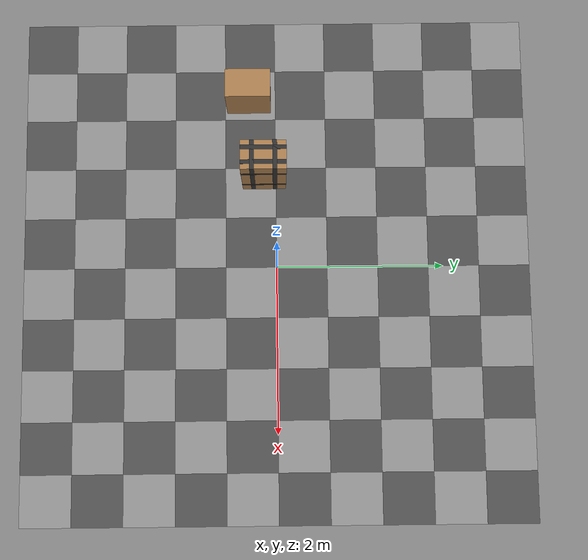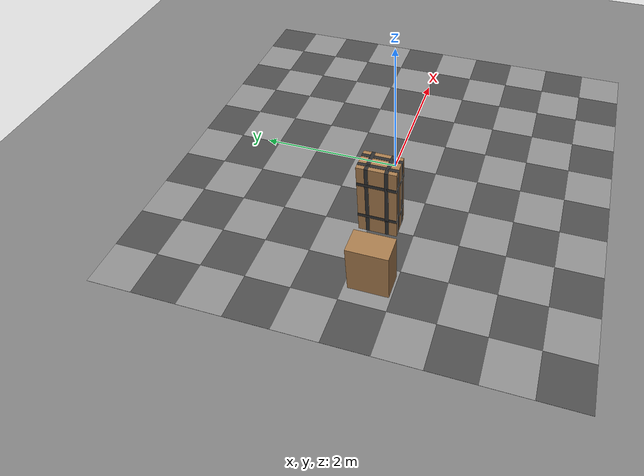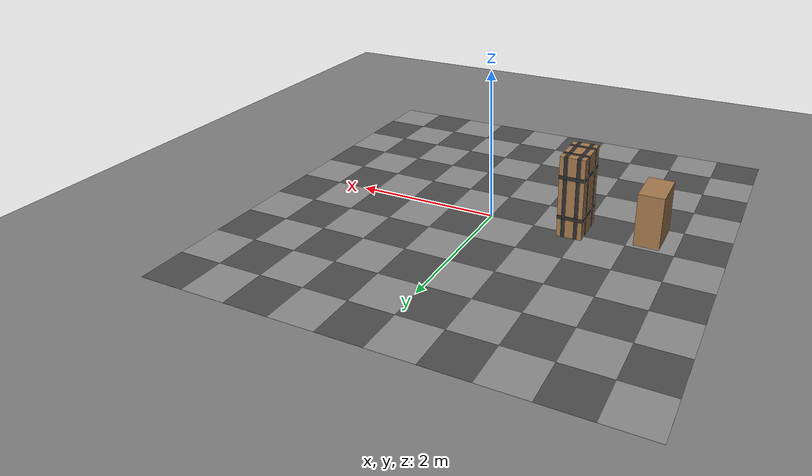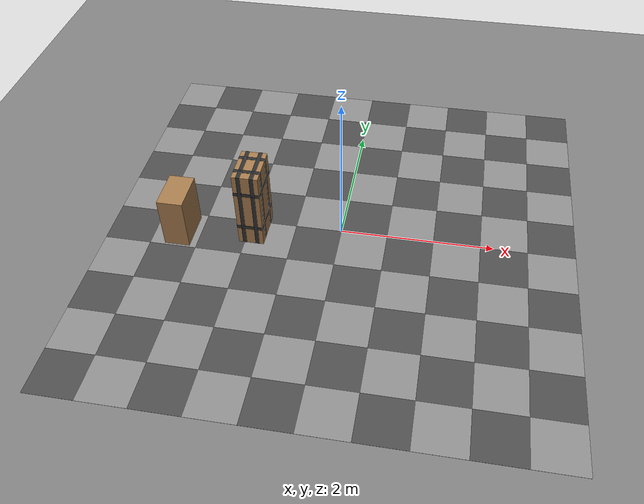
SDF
<sdf version="1.9">
 <world name="ecps295_lowbox_s28">
  <model name="ground_plane">
   <static>true</static>
   <link name="link">
    <collision name="collision">
     <geometry><plane><normal>0 0 1</normal><size>50 50</size></plane></geometry>
    </collision>
    <visual name="visual">
     <geometry><plane><normal>0 0 1</normal><size>50 50</size></plane></geometry>
     <material><ambient>0.5 0.5 0.5 1</ambient><diffuse>0.5 0.5 0.5 1</diffuse></material>
    </visual>
   </link>
  </model>
  <model name="eva_mat">
   <static>true</static>
   <link name="link">
    <visual name="t0_0">
     <pose>-2.745 -2.745 0.001 0 0 0</pose>
     <geometry><box><size>0.61 0.61 0.002</size></box></geometry>
     <material><ambient>0.3 0.3 0.3 1</ambient><diffuse>0.3 0.3 0.3 1</diffuse></material>
    </visual>
    <visual name="t0_1">
     <pose>-2.745 -2.135 0.001 0 0 0</pose>
     <geometry><box><size>0.61 0.61 0.002</size></box></geometry>
     <material><ambient>0.55 0.55 0.55 1</ambient><diffuse>0.55 0.55 0.55 1</diffuse></material>
    </visual>
    <visual name="t0_2">
     <pose>-2.745 -1.525 0.001 0 0 0</pose>
     <geometry><box><size>0.61 0.61 0.002</size></box></geometry>
     <material><ambient>0.3 0.3 0.3 1</ambient><diffuse>0.3 0.3 0.3 1</diffuse></material>
    </visual>
    <visual name="t0_3">
     <pose>-2.745 -0.915 0.001 0 0 0</pose>
     <geometry><box><size>0.61 0.61 0.002</size></box></geometry>
     <material><ambient>0.55 0.55 0.55 1</ambient><diffuse>0.55 0.55 0.55 1</diffuse></material>
    </visual>
    <visual name="t0_4">
     <pose>-2.745 -0.305 0.001 0 0 0</pose>
     <geometry><box><size>0.61 0.61 0.002</size></box></geometry>
     <material><ambient>0.3 0.3 0.3 1</ambient><diffuse>0.3 0.3 0.3 1</diffuse></material>
    </visual>
    <visual name="t0_5">
     <pose>-2.745 0.305 0.001 0 0 0</pose>
     <geometry><box><size>0.61 0.61 0.002</size></box></geometry>
     <material><ambient>0.55 0.55 0.55 1</ambient><diffuse>0.55 0.55 0.55 1</diffuse></material>
    </visual>
    <visual name="t0_6">
     <pose>-2.745 0.915 0.001 0 0 0</pose>
     <geometry><box><size>0.61 0.61 0.002</size></box></geometry>
     <material><ambient>0.3 0.3 0.3 1</ambient><diffuse>0.3 0.3 0.3 1</diffuse></material>
    </visual>
    <visual name="t0_7">
     <pose>-2.745 1.525 0.001 0 0 0</pose>
     <geometry><box><size>0.61 0.61 0.002</size></box></geometry>
     <material><ambient>0.55 0.55 0.55 1</ambient><diffuse>0.55 0.55 0.55 1</diffuse></material>
    </visual>
    <visual name="t0_8">
     <pose>-2.745 2.135 0.001 0 0 0</pose>
     <geometry><box><size>0.61 0.61 0.002</size></box></geometry>
     <material><ambient>0.3 0.3 0.3 1</ambient><diffuse>0.3 0.3 0.3 1</diffuse></material>
    </visual>
    <visual name="t0_9">
     <pose>-2.745 2.745 0.001 0 0 0</pose>
     <geometry><box><size>0.61 0.61 0.002</size></box></geometry>
     <material><ambient>0.55 0.55 0.55 1</ambient><diffuse>0.55 0.55 0.55 1</diffuse></material>
    </visual>
    <visual name="t1_0">
     <pose>-2.135 -2.745 0.001 0 0 0</pose>
     <geometry><box><size>0.61 0.61 0.002</size></box></geometry>
     <material><ambient>0.55 0.55 0.55 1</ambient><diffuse>0.55 0.55 0.55 1</diffuse></material>
    </visual>
    <visual name="t1_1">
     <pose>-2.135 -2.135 0.001 0 0 0</pose>
     <geometry><box><size>0.61 0.61 0.002</size></box></geometry>
     <material><ambient>0.3 0.3 0.3 1</ambient><diffuse>0.3 0.3 0.3 1</diffuse></material>
    </visual>
    <visual name="t1_2">
     <pose>-2.135 -1.525 0.001 0 0 0</pose>
     <geometry><box><size>0.61 0.61 0.002</size></box></geometry>
     <material><ambient>0.55 0.55 0.55 1</ambient><diffuse>0.55 0.55 0.55 1</diffuse></material>
    </visual>
    <visual name="t1_3">
     <pose>-2.135 -0.915 0.001 0 0 0</pose>
     <geometry><box><size>0.61 0.61 0.002</size></box></geometry>
     <material><ambient>0.3 0.3 0.3 1</ambient><diffuse>0.3 0.3 0.3 1</diffuse></material>
    </visual>
    <visual name="t1_4">
     <pose>-2.135 -0.305 0.001 0 0 0</pose>
     <geometry><box><size>0.61 0.61 0.002</size></box></geometry>
     <material><ambient>0.55 0.55 0.55 1</ambient><diffuse>0.55 0.55 0.55 1</diffuse></material>
    </visual>
    <visual name="t1_5">
     <pose>-2.135 0.305 0.001 0 0 0</pose>
     <geometry><box><size>0.61 0.61 0.002</size></box></geometry>
     <material><ambient>0.3 0.3 0.3 1</ambient><diffuse>0.3 0.3 0.3 1</diffuse></material>
    </visual>
    <visual name="t1_6">
     <pose>-2.135 0.915 0.001 0 0 0</pose>
     <geometry><box><size>0.61 0.61 0.002</size></box></geometry>
     <material><ambient>0.55 0.55 0.55 1</ambient><diffuse>0.55 0.55 0.55 1</diffuse></material>
    </visual>
    <visual name="t1_7">
     <pose>-2.135 1.525 0.001 0 0 0</pose>
     <geometry><box><size>0.61 0.61 0.002</size></box></geometry>
     <material><ambient>0.3 0.3 0.3 1</ambient><diffuse>0.3 0.3 0.3 1</diffuse></material>
    </visual>
    <visual name="t1_8">
     <pose>-2.135 2.135 0.001 0 0 0</pose>
     <geometry><box><size>0.61 0.61 0.002</size></box></geometry>
     <material><ambient>0.55 0.55 0.55 1</ambient><diffuse>0.55 0.55 0.55 1</diffuse></material>
    </visual>
    <visual name="t1_9">
     <pose>-2.135 2.745 0.001 0 0 0</pose>
     <geometry><box><size>0.61 0.61 0.002</size></box></geometry>
     <material><ambient>0.3 0.3 0.3 1</ambient><diffuse>0.3 0.3 0.3 1</diffuse></material>
    </visual>
    <visual name="t2_0">
     <pose>-1.525 -2.745 0.001 0 0 0</pose>
     <geometry><box><size>0.61 0.61 0.002</size></box></geometry>
     <material><ambient>0.3 0.3 0.3 1</ambient><diffuse>0.3 0.3 0.3 1</diffuse></material>
    </visual>
    <visual name="t2_1">
     <pose>-1.525 -2.135 0.001 0 0 0</pose>
     <geometry><box><size>0.61 0.61 0.002</size></box></geometry>
     <material><ambient>0.55 0.55 0.55 1</ambient><diffuse>0.55 0.55 0.55 1</diffuse></material>
    </visual>
    <visual name="t2_2">
     <pose>-1.525 -1.525 0.001 0 0 0</pose>
     <geometry><box><size>0.61 0.61 0.002</size></box></geometry>
     <material><ambient>0.3 0.3 0.3 1</ambient><diffuse>0.3 0.3 0.3 1</diffuse></material>
    </visual>
    <visual name="t2_3">
     <pose>-1.525 -0.915 0.001 0 0 0</pose>
     <geometry><box><size>0.61 0.61 0.002</size></box></geometry>
     <material><ambient>0.55 0.55 0.55 1</ambient><diffuse>0.55 0.55 0.55 1</diffuse></material>
    </visual>
    <visual name="t2_4">
     <pose>-1.525 -0.305 0.001 0 0 0</pose>
     <geometry><box><size>0.61 0.61 0.002</size></box></geometry>
     <material><ambient>0.3 0.3 0.3 1</ambient><diffuse>0.3 0.3 0.3 1</diffuse></material>
    </visual>
    <visual name="t2_5">
     <pose>-1.525 0.305 0.001 0 0 0</pose>
     <geometry><box><size>0.61 0.61 0.002</size></box></geometry>
     <material><ambient>0.55 0.55 0.55 1</ambient><diffuse>0.55 0.55 0.55 1</diffuse></material>
    </visual>
    <visual name="t2_6">
     <pose>-1.525 0.915 0.001 0 0 0</pose>
     <geometry><box><size>0.61 0.61 0.002</size></box></geometry>
     <material><ambient>0.3 0.3 0.3 1</ambient><diffuse>0.3 0.3 0.3 1</diffuse></material>
    </visual>
    <visual name="t2_7">
     <pose>-1.525 1.525 0.001 0 0 0</pose>
     <geometry><box><size>0.61 0.61 0.002</size></box></geometry>
     <material><ambient>0.55 0.55 0.55 1</ambient><diffuse>0.55 0.55 0.55 1</diffuse></material>
    </visual>
    <visual name="t2_8">
     <pose>-1.525 2.135 0.001 0 0 0</pose>
     <geometry><box><size>0.61 0.61 0.002</size></box></geometry>
     <material><ambient>0.3 0.3 0.3 1</ambient><diffuse>0.3 0.3 0.3 1</diffuse></material>
    </visual>
    <visual name="t2_9">
     <pose>-1.525 2.745 0.001 0 0 0</pose>
     <geometry><box><size>0.61 0.61 0.002</size></box></geometry>
     <material><ambient>0.55 0.55 0.55 1</ambient><diffuse>0.55 0.55 0.55 1</diffuse></material>
    </visual>
    <visual name="t3_0">
     <pose>-0.915 -2.745 0.001 0 0 0</pose>
     <geometry><box><size>0.61 0.61 0.002</size></box></geometry>
     <material><ambient>0.55 0.55 0.55 1</ambient><diffuse>0.55 0.55 0.55 1</diffuse></material>
    </visual>
    <visual name="t3_1">
     <pose>-0.915 -2.135 0.001 0 0 0</pose>
     <geometry><box><size>0.61 0.61 0.002</size></box></geometry>
     <material><ambient>0.3 0.3 0.3 1</ambient><diffuse>0.3 0.3 0.3 1</diffuse></material>
    </visual>
    <visual name="t3_2">
     <pose>-0.915 -1.525 0.001 0 0 0</pose>
     <geometry><box><size>0.61 0.61 0.002</size></box></geometry>
     <material><ambient>0.55 0.55 0.55 1</ambient><diffuse>0.55 0.55 0.55 1</diffuse></material>
    </visual>
    <visual name="t3_3">
     <pose>-0.915 -0.915 0.001 0 0 0</pose>
     <geometry><box><size>0.61 0.61 0.002</size></box></geometry>
     <material><ambient>0.3 0.3 0.3 1</ambient><diffuse>0.3 0.3 0.3 1</diffuse></material>
    </visual>
    <visual name="t3_4">
     <pose>-0.915 -0.305 0.001 0 0 0</pose>
     <geometry><box><size>0.61 0.61 0.002</size></box></geometry>
     <material><ambient>0.55 0.55 0.55 1</ambient><diffuse>0.55 0.55 0.55 1</diffuse></material>
    </visual>
    <visual name="t3_5">
     <pose>-0.915 0.305 0.001 0 0 0</pose>
     <geometry><box><size>0.61 0.61 0.002</size></box></geometry>
     <material><ambient>0.3 0.3 0.3 1</ambient><diffuse>0.3 0.3 0.3 1</diffuse></material>
    </visual>
    <visual name="t3_6">
     <pose>-0.915 0.915 0.001 0 0 0</pose>
     <geometry><box><size>0.61 0.61 0.002</size></box></geometry>
     <material><ambient>0.55 0.55 0.55 1</ambient><diffuse>0.55 0.55 0.55 1</diffuse></material>
    </visual>
    <visual name="t3_7">
     <pose>-0.915 1.525 0.001 0 0 0</pose>
     <geometry><box><size>0.61 0.61 0.002</size></box></geometry>
     <material><ambient>0.3 0.3 0.3 1</ambient><diffuse>0.3 0.3 0.3 1</diffuse></material>
    </visual>
    <visual name="t3_8">
     <pose>-0.915 2.135 0.001 0 0 0</pose>
     <geometry><box><size>0.61 0.61 0.002</size></box></geometry>
     <material><ambient>0.55 0.55 0.55 1</ambient><diffuse>0.55 0.55 0.55 1</diffuse></material>
    </visual>
    <visual name="t3_9">
     <pose>-0.915 2.745 0.001 0 0 0</pose>
     <geometry><box><size>0.61 0.61 0.002</size></box></geometry>
     <material><ambient>0.3 0.3 0.3 1</ambient><diffuse>0.3 0.3 0.3 1</diffuse></material>
    </visual>
    <visual name="t4_0">
     <pose>-0.305 -2.745 0.001 0 0 0</pose>
     <geometry><box><size>0.61 0.61 0.002</size></box></geometry>
     <material><ambient>0.3 0.3 0.3 1</ambient><diffuse>0.3 0.3 0.3 1</diffuse></material>
    </visual>
    <visual name="t4_1">
     <pose>-0.305 -2.135 0.001 0 0 0</pose>
     <geometry><box><size>0.61 0.61 0.002</size></box></geometry>
     <material><ambient>0.55 0.55 0.55 1</ambient><diffuse>0.55 0.55 0.55 1</diffuse></material>
    </visual>
    <visual name="t4_2">
     <pose>-0.305 -1.525 0.001 0 0 0</pose>
     <geometry><box><size>0.61 0.61 0.002</size></box></geometry>
     <material><ambient>0.3 0.3 0.3 1</ambient><diffuse>0.3 0.3 0.3 1</diffuse></material>
    </visual>
    <visual name="t4_3">
     <pose>-0.305 -0.915 0.001 0 0 0</pose>
     <geometry><box><size>0.61 0.61 0.002</size></box></geometry>
     <material><ambient>0.55 0.55 0.55 1</ambient><diffuse>0.55 0.55 0.55 1</diffuse></material>
    </visual>
    <visual name="t4_4">
     <pose>-0.305 -0.305 0.001 0 0 0</pose>
     <geometry><box><size>0.61 0.61 0.002</size></box></geometry>
     <material><ambient>0.3 0.3 0.3 1</ambient><diffuse>0.3 0.3 0.3 1</diffuse></material>
    </visual>
    <visual name="t4_5">
     <pose>-0.305 0.305 0.001 0 0 0</pose>
     <geometry><box><size>0.61 0.61 0.002</size></box></geometry>
     <material><ambient>0.55 0.55 0.55 1</ambient><diffuse>0.55 0.55 0.55 1</diffuse></material>
    </visual>
    <visual name="t4_6">
     <pose>-0.305 0.915 0.001 0 0 0</pose>
     <geometry><box><size>0.61 0.61 0.002</size></box></geometry>
     <material><ambient>0.3 0.3 0.3 1</ambient><diffuse>0.3 0.3 0.3 1</diffuse></material>
    </visual>
    <visual name="t4_7">
     <pose>-0.305 1.525 0.001 0 0 0</pose>
     <geometry><box><size>0.61 0.61 0.002</size></box></geometry>
     <material><ambient>0.55 0.55 0.55 1</ambient><diffuse>0.55 0.55 0.55 1</diffuse></material>
    </visual>
    <visual name="t4_8">
     <pose>-0.305 2.135 0.001 0 0 0</pose>
     <geometry><box><size>0.61 0.61 0.002</size></box></geometry>
     <material><ambient>0.3 0.3 0.3 1</ambient><diffuse>0.3 0.3 0.3 1</diffuse></material>
    </visual>
    <visual name="t4_9">
     <pose>-0.305 2.745 0.001 0 0 0</pose>
     <geometry><box><size>0.61 0.61 0.002</size></box></geometry>
     <material><ambient>0.55 0.55 0.55 1</ambient><diffuse>0.55 0.55 0.55 1</diffuse></material>
    </visual>
    <visual name="t5_0">
     <pose>0.305 -2.745 0.001 0 0 0</pose>
     <geometry><box><size>0.61 0.61 0.002</size></box></geometry>
     <material><ambient>0.55 0.55 0.55 1</ambient><diffuse>0.55 0.55 0.55 1</diffuse></material>
    </visual>
    <visual name="t5_1">
     <pose>0.305 -2.135 0.001 0 0 0</pose>
     <geometry><box><size>0.61 0.61 0.002</size></box></geometry>
     <material><ambient>0.3 0.3 0.3 1</ambient><diffuse>0.3 0.3 0.3 1</diffuse></material>
    </visual>
    <visual name="t5_2">
     <pose>0.305 -1.525 0.001 0 0 0</pose>
     <geometry><box><size>0.61 0.61 0.002</size></box></geometry>
     <material><ambient>0.55 0.55 0.55 1</ambient><diffuse>0.55 0.55 0.55 1</diffuse></material>
    </visual>
    <visual name="t5_3">
     <pose>0.305 -0.915 0.001 0 0 0</pose>
     <geometry><box><size>0.61 0.61 0.002</size></box></geometry>
     <material><ambient>0.3 0.3 0.3 1</ambient><diffuse>0.3 0.3 0.3 1</diffuse></material>
    </visual>
    <visual name="t5_4">
     <pose>0.305 -0.305 0.001 0 0 0</pose>
     <geometry><box><size>0.61 0.61 0.002</size></box></geometry>
     <material><ambient>0.55 0.55 0.55 1</ambient><diffuse>0.55 0.55 0.55 1</diffuse></material>
    </visual>
    <visual name="t5_5">
     <pose>0.305 0.305 0.001 0 0 0</pose>
     <geometry><box><size>0.61 0.61 0.002</size></box></geometry>
     <material><ambient>0.3 0.3 0.3 1</ambient><diffuse>0.3 0.3 0.3 1</diffuse></material>
    </visual>
    <visual name="t5_6">
     <pose>0.305 0.915 0.001 0 0 0</pose>
     <geometry><box><size>0.61 0.61 0.002</size></box></geometry>
     <material><ambient>0.55 0.55 0.55 1</ambient><diffuse>0.55 0.55 0.55 1</diffuse></material>
    </visual>
    <visual name="t5_7">
     <pose>0.305 1.525 0.001 0 0 0</pose>
     <geometry><box><size>0.61 0.61 0.002</size></box></geometry>
     <material><ambient>0.3 0.3 0.3 1</ambient><diffuse>0.3 0.3 0.3 1</diffuse></material>
    </visual>
    <visual name="t5_8">
     <pose>0.305 2.135 0.001 0 0 0</pose>
     <geometry><box><size>0.61 0.61 0.002</size></box></geometry>
     <material><ambient>0.55 0.55 0.55 1</ambient><diffuse>0.55 0.55 0.55 1</diffuse></material>
    </visual>
    <visual name="t5_9">
     <pose>0.305 2.745 0.001 0 0 0</pose>
     <geometry><box><size>0.61 0.61 0.002</size></box></geometry>
     <material><ambient>0.3 0.3 0.3 1</ambient><diffuse>0.3 0.3 0.3 1</diffuse></material>
    </visual>
    <visual name="t6_0">
     <pose>0.915 -2.745 0.001 0 0 0</pose>
     <geometry><box><size>0.61 0.61 0.002</size></box></geometry>
     <material><ambient>0.3 0.3 0.3 1</ambient><diffuse>0.3 0.3 0.3 1</diffuse></material>
    </visual>
    <visual name="t6_1">
     <pose>0.915 -2.135 0.001 0 0 0</pose>
     <geometry><box><size>0.61 0.61 0.002</size></box></geometry>
     <material><ambient>0.55 0.55 0.55 1</ambient><diffuse>0.55 0.55 0.55 1</diffuse></material>
    </visual>
    <visual name="t6_2">
     <pose>0.915 -1.525 0.001 0 0 0</pose>
     <geometry><box><size>0.61 0.61 0.002</size></box></geometry>
     <material><ambient>0.3 0.3 0.3 1</ambient><diffuse>0.3 0.3 0.3 1</diffuse></material>
    </visual>
    <visual name="t6_3">
     <pose>0.915 -0.915 0.001 0 0 0</pose>
     <geometry><box><size>0.61 0.61 0.002</size></box></geometry>
     <material><ambient>0.55 0.55 0.55 1</ambient><diffuse>0.55 0.55 0.55 1</diffuse></material>
    </visual>
    <visual name="t6_4">
     <pose>0.915 -0.305 0.001 0 0 0</pose>
     <geometry><box><size>0.61 0.61 0.002</size></box></geometry>
     <material><ambient>0.3 0.3 0.3 1</ambient><diffuse>0.3 0.3 0.3 1</diffuse></material>
    </visual>
    <visual name="t6_5">
     <pose>0.915 0.305 0.001 0 0 0</pose>
     <geometry><box><size>0.61 0.61 0.002</size></box></geometry>
     <material><ambient>0.55 0.55 0.55 1</ambient><diffuse>0.55 0.55 0.55 1</diffuse></material>
    </visual>
    <visual name="t6_6">
     <pose>0.915 0.915 0.001 0 0 0</pose>
     <geometry><box><size>0.61 0.61 0.002</size></box></geometry>
     <material><ambient>0.3 0.3 0.3 1</ambient><diffuse>0.3 0.3 0.3 1</diffuse></material>
    </visual>
    <visual name="t6_7">
     <pose>0.915 1.525 0.001 0 0 0</pose>
     <geometry><box><size>0.61 0.61 0.002</size></box></geometry>
     <material><ambient>0.55 0.55 0.55 1</ambient><diffuse>0.55 0.55 0.55 1</diffuse></material>
    </visual>
    <visual name="t6_8">
     <pose>0.915 2.135 0.001 0 0 0</pose>
     <geometry><box><size>0.61 0.61 0.002</size></box></geometry>
     <material><ambient>0.3 0.3 0.3 1</ambient><diffuse>0.3 0.3 0.3 1</diffuse></material>
    </visual>
    <visual name="t6_9">
     <pose>0.915 2.745 0.001 0 0 0</pose>
     <geometry><box><size>0.61 0.61 0.002</size></box></geometry>
     <material><ambient>0.55 0.55 0.55 1</ambient><diffuse>0.55 0.55 0.55 1</diffuse></material>
    </visual>
    <visual name="t7_0">
     <pose>1.525 -2.745 0.001 0 0 0</pose>
     <geometry><box><size>0.61 0.61 0.002</size></box></geometry>
     <material><ambient>0.55 0.55 0.55 1</ambient><diffuse>0.55 0.55 0.55 1</diffuse></material>
    </visual>
    <visual name="t7_1">
     <pose>1.525 -2.135 0.001 0 0 0</pose>
     <geometry><box><size>0.61 0.61 0.002</size></box></geometry>
     <material><ambient>0.3 0.3 0.3 1</ambient><diffuse>0.3 0.3 0.3 1</diffuse></material>
    </visual>
    <visual name="t7_2">
     <pose>1.525 -1.525 0.001 0 0 0</pose>
     <geometry><box><size>0.61 0.61 0.002</size></box></geometry>
     <material><ambient>0.55 0.55 0.55 1</ambient><diffuse>0.55 0.55 0.55 1</diffuse></material>
    </visual>
    <visual name="t7_3">
     <pose>1.525 -0.915 0.001 0 0 0</pose>
     <geometry><box><size>0.61 0.61 0.002</size></box></geometry>
     <material><ambient>0.3 0.3 0.3 1</ambient><diffuse>0.3 0.3 0.3 1</diffuse></material>
    </visual>
    <visual name="t7_4">
     <pose>1.525 -0.305 0.001 0 0 0</pose>
     <geometry><box><size>0.61 0.61 0.002</size></box></geometry>
     <material><ambient>0.55 0.55 0.55 1</ambient><diffuse>0.55 0.55 0.55 1</diffuse></material>
    </visual>
    <visual name="t7_5">
     <pose>1.525 0.305 0.001 0 0 0</pose>
     <geometry><box><size>0.61 0.61 0.002</size></box></geometry>
     <material><ambient>0.3 0.3 0.3 1</ambient><diffuse>0.3 0.3 0.3 1</diffuse></material>
    </visual>
    <visual name="t7_6">
     <pose>1.525 0.915 0.001 0 0 0</pose>
     <geometry><box><size>0.61 0.61 0.002</size></box></geometry>
     <material><ambient>0.55 0.55 0.55 1</ambient><diffuse>0.55 0.55 0.55 1</diffuse></material>
    </visual>
    <visual name="t7_7">
     <pose>1.525 1.525 0.001 0 0 0</pose>
     <geometry><box><size>0.61 0.61 0.002</size></box></geometry>
     <material><ambient>0.3 0.3 0.3 1</ambient><diffuse>0.3 0.3 0.3 1</diffuse></material>
    </visual>
    <visual name="t7_8">
     <pose>1.525 2.135 0.001 0 0 0</pose>
     <geometry><box><size>0.61 0.61 0.002</size></box></geometry>
     <material><ambient>0.55 0.55 0.55 1</ambient><diffuse>0.55 0.55 0.55 1</diffuse></material>
    </visual>
    <visual name="t7_9">
     <pose>1.525 2.745 0.001 0 0 0</pose>
     <geometry><box><size>0.61 0.61 0.002</size></box></geometry>
     <material><ambient>0.3 0.3 0.3 1</ambient><diffuse>0.3 0.3 0.3 1</diffuse></material>
    </visual>
    <visual name="t8_0">
     <pose>2.135 -2.745 0.001 0 0 0</pose>
     <geometry><box><size>0.61 0.61 0.002</size></box></geometry>
     <material><ambient>0.3 0.3 0.3 1</ambient><diffuse>0.3 0.3 0.3 1</diffuse></material>
    </visual>
    <visual name="t8_1">
     <pose>2.135 -2.135 0.001 0 0 0</pose>
     <geometry><box><size>0.61 0.61 0.002</size></box></geometry>
     <material><ambient>0.55 0.55 0.55 1</ambient><diffuse>0.55 0.55 0.55 1</diffuse></material>
    </visual>
    <visual name="t8_2">
     <pose>2.135 -1.525 0.001 0 0 0</pose>
     <geometry><box><size>0.61 0.61 0.002</size></box></geometry>
     <material><ambient>0.3 0.3 0.3 1</ambient><diffuse>0.3 0.3 0.3 1</diffuse></material>
    </visual>
    <visual name="t8_3">
     <pose>2.135 -0.915 0.001 0 0 0</pose>
     <geometry><box><size>0.61 0.61 0.002</size></box></geometry>
     <material><ambient>0.55 0.55 0.55 1</ambient><diffuse>0.55 0.55 0.55 1</diffuse></material>
    </visual>
    <visual name="t8_4">
     <pose>2.135 -0.305 0.001 0 0 0</pose>
     <geometry><box><size>0.61 0.61 0.002</size></box></geometry>
     <material><ambient>0.3 0.3 0.3 1</ambient><diffuse>0.3 0.3 0.3 1</diffuse></material>
    </visual>
    <visual name="t8_5">
     <pose>2.135 0.305 0.001 0 0 0</pose>
     <geometry><box><size>0.61 0.61 0.002</size></box></geometry>
     <material><ambient>0.55 0.55 0.55 1</ambient><diffuse>0.55 0.55 0.55 1</diffuse></material>
    </visual>
    <visual name="t8_6">
     <pose>2.135 0.915 0.001 0 0 0</pose>
     <geometry><box><size>0.61 0.61 0.002</size></box></geometry>
     <material><ambient>0.3 0.3 0.3 1</ambient><diffuse>0.3 0.3 0.3 1</diffuse></material>
    </visual>
    <visual name="t8_7">
     <pose>2.135 1.525 0.001 0 0 0</pose>
     <geometry><box><size>0.61 0.61 0.002</size></box></geometry>
     <material><ambient>0.55 0.55 0.55 1</ambient><diffuse>0.55 0.55 0.55 1</diffuse></material>
    </visual>
    <visual name="t8_8">
     <pose>2.135 2.135 0.001 0 0 0</pose>
     <geometry><box><size>0.61 0.61 0.002</size></box></geometry>
     <material><ambient>0.3 0.3 0.3 1</ambient><diffuse>0.3 0.3 0.3 1</diffuse></material>
    </visual>
    <visual name="t8_9">
     <pose>2.135 2.745 0.001 0 0 0</pose>
     <geometry><box><size>0.61 0.61 0.002</size></box></geometry>
     <material><ambient>0.55 0.55 0.55 1</ambient><diffuse>0.55 0.55 0.55 1</diffuse></material>
    </visual>
    <visual name="t9_0">
     <pose>2.745 -2.745 0.001 0 0 0</pose>
     <geometry><box><size>0.61 0.61 0.002</size></box></geometry>
     <material><ambient>0.55 0.55 0.55 1</ambient><diffuse>0.55 0.55 0.55 1</diffuse></material>
    </visual>
    <visual name="t9_1">
     <pose>2.745 -2.135 0.001 0 0 0</pose>
     <geometry><box><size>0.61 0.61 0.002</size></box></geometry>
     <material><ambient>0.3 0.3 0.3 1</ambient><diffuse>0.3 0.3 0.3 1</diffuse></material>
    </visual>
    <visual name="t9_2">
     <pose>2.745 -1.525 0.001 0 0 0</pose>
     <geometry><box><size>0.61 0.61 0.002</size></box></geometry>
     <material><ambient>0.55 0.55 0.55 1</ambient><diffuse>0.55 0.55 0.55 1</diffuse></material>
    </visual>
    <visual name="t9_3">
     <pose>2.745 -0.915 0.001 0 0 0</pose>
     <geometry><box><size>0.61 0.61 0.002</size></box></geometry>
     <material><ambient>0.3 0.3 0.3 1</ambient><diffuse>0.3 0.3 0.3 1</diffuse></material>
    </visual>
    <visual name="t9_4">
     <pose>2.745 -0.305 0.001 0 0 0</pose>
     <geometry><box><size>0.61 0.61 0.002</size></box></geometry>
     <material><ambient>0.55 0.55 0.55 1</ambient><diffuse>0.55 0.55 0.55 1</diffuse></material>
    </visual>
    <visual name="t9_5">
     <pose>2.745 0.305 0.001 0 0 0</pose>
     <geometry><box><size>0.61 0.61 0.002</size></box></geometry>
     <material><ambient>0.3 0.3 0.3 1</ambient><diffuse>0.3 0.3 0.3 1</diffuse></material>
    </visual>
    <visual name="t9_6">
     <pose>2.745 0.915 0.001 0 0 0</pose>
     <geometry><box><size>0.61 0.61 0.002</size></box></geometry>
     <material><ambient>0.55 0.55 0.55 1</ambient><diffuse>0.55 0.55 0.55 1</diffuse></material>
    </visual>
    <visual name="t9_7">
     <pose>2.745 1.525 0.001 0 0 0</pose>
     <geometry><box><size>0.61 0.61 0.002</size></box></geometry>
     <material><ambient>0.3 0.3 0.3 1</ambient><diffuse>0.3 0.3 0.3 1</diffuse></material>
    </visual>
    <visual name="t9_8">
     <pose>2.745 2.135 0.001 0 0 0</pose>
     <geometry><box><size>0.61 0.61 0.002</size></box></geometry>
     <material><ambient>0.55 0.55 0.55 1</ambient><diffuse>0.55 0.55 0.55 1</diffuse></material>
    </visual>
    <visual name="t9_9">
     <pose>2.745 2.745 0.001 0 0 0</pose>
     <geometry><box><size>0.61 0.61 0.002</size></box></geometry>
     <material><ambient>0.3 0.3 0.3 1</ambient><diffuse>0.3 0.3 0.3 1</diffuse></material>
    </visual>
   </link>
  </model>
  <model name="lb1">
   <static>true</static>
   <pose>-2.08 -0.32 0.356 0 0 0</pose>
   <link name="link">
    <collision name="c"><geometry><box><size>0.33 0.53 0.71</size></box></geometry></collision>
    <visual name="v">
     <geometry><box><size>0.33 0.53 0.71</size></box></geometry>
     <material><ambient>0.65 0.48 0.30 1</ambient><diffuse>0.65 0.48 0.30 1</diffuse></material>
    </visual>
   </link>
  </model>
  <model name="lb5">
   <static>true</static>
   <pose>-1.13 -0.14 0.55 0 0 0</pose>
   <link name="link">
    <collision name="c"><geometry><box><size>0.33 0.52 1.1</size></box></geometry></collision>
    <visual name="v">
     <geometry><box><size>0.33 0.52 1.1</size></box></geometry>
     <material><ambient>0.65 0.48 0.30 1</ambient><diffuse>0.65 0.48 0.30 1</diffuse></material>
    </visual>
    <visual name="tape_ring0">
     <pose>0.000 0.000 -0.275 0 0 0</pose>
     <geometry><box><size>0.334 0.524 0.050</size></box></geometry>
     <material><ambient>0.18 0.18 0.18 1</ambient><diffuse>0.18 0.18 0.18 1</diffuse></material>
    </visual>
    <visual name="tape_bx0">
     <pose>-0.083 0.000 0.000 0 0 0</pose>
     <geometry><box><size>0.050 0.524 1.104</size></box></geometry>
     <material><ambient>0.18 0.18 0.18 1</ambient><diffuse>0.18 0.18 0.18 1</diffuse></material>
    </visual>
    <visual name="tape_by0">
     <pose>0.000 -0.130 0.000 0 0 0</pose>
     <geometry><box><size>0.334 0.050 1.104</size></box></geometry>
     <material><ambient>0.18 0.18 0.18 1</ambient><diffuse>0.18 0.18 0.18 1</diffuse></material>
    </visual>
    <visual name="tape_ring1">
     <pose>0.000 0.000 0.275 0 0 0</pose>
     <geometry><box><size>0.334 0.524 0.050</size></box></geometry>
     <material><ambient>0.18 0.18 0.18 1</ambient><diffuse>0.18 0.18 0.18 1</diffuse></material>
    </visual>
    <visual name="tape_bx1">
     <pose>0.083 0.000 0.000 0 0 0</pose>
     <geometry><box><size>0.050 0.524 1.104</size></box></geometry>
     <material><ambient>0.18 0.18 0.18 1</ambient><diffuse>0.18 0.18 0.18 1</diffuse></material>
    </visual>
    <visual name="tape_by1">
     <pose>0.000 0.130 0.000 0 0 0</pose>
     <geometry><box><size>0.334 0.050 1.104</size></box></geometry>
     <material><ambient>0.18 0.18 0.18 1</ambient><diffuse>0.18 0.18 0.18 1</diffuse></material>
    </visual>
   </link>
  </model>
 </world>
</sdf>
